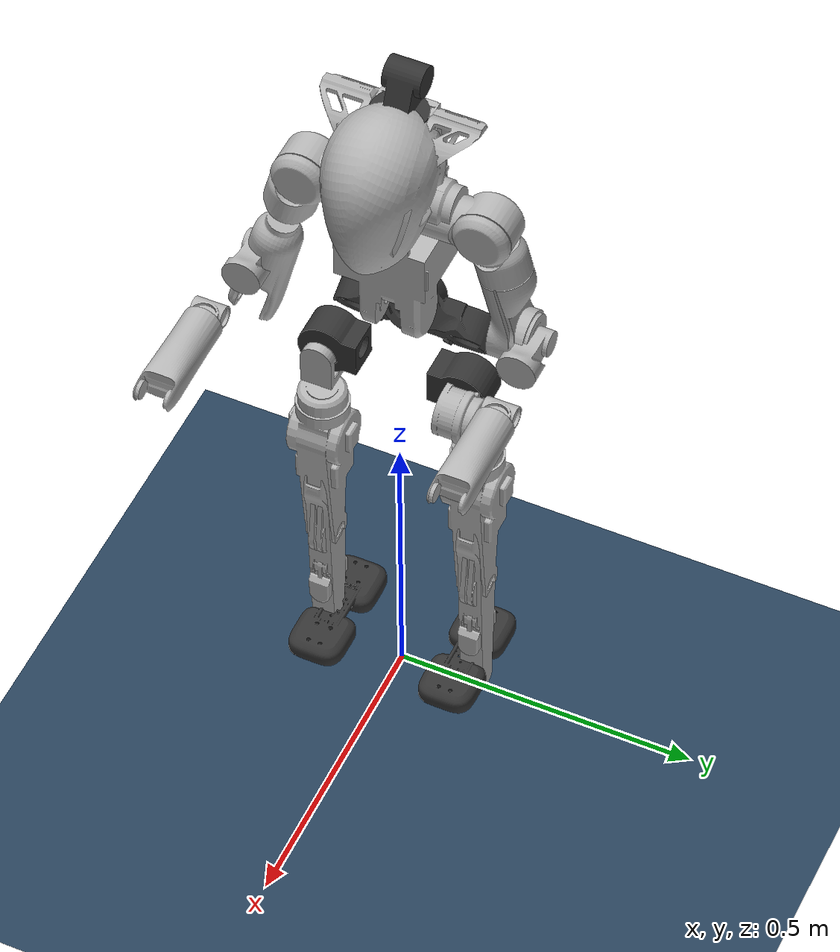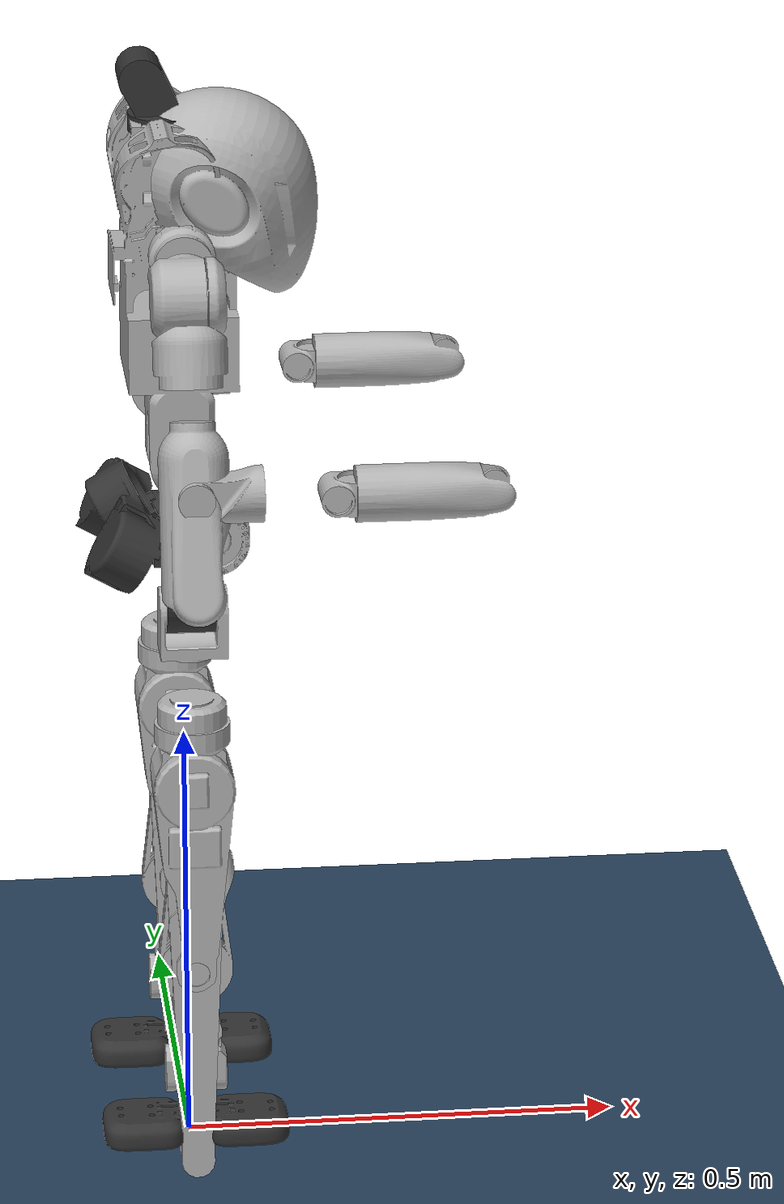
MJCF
<mujoco model="E1_2_v1">
  <compiler angle="radian" meshdir="./meshes/"/>

  <default>
    <default class="e2">
      <geom contype="0" conaffinity="0"/>
      <joint frictionloss="0.01" damping="0.01" armature="0.01"/>

      <default class="hip">
        <default class="hip_pitch">
          <joint axis="0 1 0" range="-2.5307 2.8798" actuatorfrcrange="-120 120"/>
        </default>
        <default class="hip_roll">
          <joint axis="1 0 0" actuatorfrcrange="-60 60"/>
        </default>
        <default class="hip_yaw">
          <joint axis="0 0 1" range="-2.0944 2.0944" actuatorfrcrange="-36 36"/>
        </default>
      </default>
      <default class="knee">
        <joint axis="0 1 0" range="0 2.2689" actuatorfrcrange="-120 120"/>
      </default>
      <default class="ankle">
        <default class="ankle_pitch">
          <joint axis="0 1 0" range="-0.5236 0.5236" actuatorfrcrange="-36 36"/>
        </default>
        <default class="ankle_roll">
          <joint axis="1 0 0" range="-1.5708 1.5708" actuatorfrcrange="-30 30"/>
        </default>
      </default>
      <default class="waist_yaw">
        <joint axis="0 0 1" range="-2.0944 2.0944" actuatorfrcrange="-60 60"/>
      </default>
      <default class="shoulder">
        <default class="shoulder_pitch">
          <joint axis="0 1 0" range="-2.2253 0.9163" actuatorfrcrange="-60 60"/>
        </default>
        <default class="shoulder_roll">
          <joint axis="1 0 0" actuatorfrcrange="-36 36"/>
        </default>
        <default class="shoulder_yaw">
          <joint axis="0 0 1" range="-2.0944 2.0944" actuatorfrcrange="-15 15"/>
        </default>
      </default>
      <default class="elbow">
        <joint axis="0 1 0" range="-0.698 1.5708" actuatorfrcrange="-60 60"/>
      </default>
      <default class="wrist">
        <default class="wrist_roll">
          <joint axis="1 0 0" range="-2.0944 2.0944" actuatorfrcrange="-15 15"/>
        </default>
        <default class="wrist_pitch">
          <joint axis="0 1 0" actuatorfrcrange="-6 6"/>
        </default>
      </default>
      <default class="head">
        <default class="head_pitch">
          <joint axis="0 1 0" range="-0.2618 0.2618" actuatorfrcrange="-30 30"/>
        </default>
        <default class="head_yaw">
          <joint axis="0 0 1" range="-0.7854 0.7854" actuatorfrcrange="-30 30"/>
        </default>
      </default>

      <default class="visual">
        <geom group="2" type="mesh" density="0" material="silver"/>
      </default>
      <default class="collision">
        <geom group="3" type="mesh" rgba=".2 .6 .2 .3" contype="1" conaffinity="1"/>
      </default>
    </default>
  </default>

  <asset>
    <material name="silver" rgba="0.7 0.7 0.7 1"/>
    <material name="black" rgba="0.2 0.2 0.2 1"/>

    <mesh name="pelvis" file="pelvis.STL"/>
    <mesh name="left_hip_pitch_link" file="left_hip_pitch_link.STL"/>
    <mesh name="left_hip_roll_link" file="left_hip_roll_link.STL"/>
    <mesh name="left_hip_yaw_link" file="left_hip_yaw_link.STL"/>
    <mesh name="left_knee_link" file="left_knee_link.STL"/>
    <mesh name="left_ankle_pitch_link" file="left_ankle_pitch_link.STL"/>
    <mesh name="left_ankle_roll_link_v1_2" file="left_ankle_roll_link_v1_2.STL"/>
    <mesh name="right_hip_pitch_link" file="right_hip_pitch_link.STL"/>
    <mesh name="right_hip_roll_link" file="right_hip_roll_link.STL"/>
    <mesh name="right_hip_yaw_link" file="right_hip_yaw_link.STL"/>
    <mesh name="right_knee_link" file="right_knee_link.STL"/>
    <mesh name="right_ankle_pitch_link" file="right_ankle_pitch_link.STL"/>
    <mesh name="right_ankle_roll_link_v1_2" file="right_ankle_roll_link_v1_2.STL"/>
    <mesh name="torso_link" file="torso_link.STL"/>
    <mesh name="left_shoulder_pitch_link" file="left_shoulder_pitch_link.STL"/>
    <mesh name="left_shoulder_roll_link" file="left_shoulder_roll_link.STL"/>
    <mesh name="left_shoulder_yaw_link" file="left_shoulder_yaw_link.STL"/>
    <mesh name="left_elbow_link" file="left_elbow_link.STL"/>
    <mesh name="left_wrist_roll_link" file="left_wrist_roll_link.STL"/>
    <mesh name="left_wrist_pitch_link" file="left_wrist_pitch_link.STL"/>
    <mesh name="right_shoulder_pitch_link" file="right_shoulder_pitch_link.STL"/>
    <mesh name="right_shoulder_roll_link" file="right_shoulder_roll_link.STL"/>
    <mesh name="right_shoulder_yaw_link" file="right_shoulder_yaw_link.STL"/>
    <mesh name="right_elbow_link" file="right_elbow_link.STL"/>
    <mesh name="right_wrist_roll_link" file="right_wrist_roll_link.STL"/>
    <mesh name="right_wrist_pitch_link" file="right_wrist_pitch_link.STL"/>
    <mesh name="head_pitch_link" file="head_pitch_link.STL"/>
    <mesh name="head_yaw_link" file="head_yaw_link.STL"/>
  </asset>

  <worldbody>
    <body name="pelvis" pos="0 0 0.715" childclass="e2">
      <inertial pos="-2.026e-05 0 0.0250193" quat="1 -1.77058e-05 -6.2652e-05 0.000906207" mass="3.6" diaginertia="0.0112704 0.00928407 0.00672158"/>
      <freejoint name="floating_base_joint"/>
      <geom class="visual" material="black" mesh="pelvis"/>
      <geom class="visual" mesh="pelvis"/>
      <site name="imu_in_pelvis" size="0.01" pos="0.04 0 -0.04" rgba="0 0 0 0"/>
      <geom class="collision" mesh="pelvis"/>
      <body name="left_hip_pitch_link" pos="0 0.0575 0">
        <inertial pos="0.00088737 0.0559209 -0.0170011" quat="0.525183 0.830564 -0.161076 0.0916522" mass="1.01" diaginertia="0.00103812 0.00100921 0.000721394"/>
        <joint name="left_hip_pitch_joint" class="hip_pitch"/>
        <geom class="visual" material="black" mesh="left_hip_pitch_link"/>
        <body name="left_hip_roll_link" pos="0 0.0625 -0.02">
          <inertial pos="-0.00054795 0.00928439 -0.070913" quat="0.72708 0.0123078 0.0971982 0.679526" mass="0.981" diaginertia="0.00140293 0.0012261 0.000954215"/>
          <joint name="left_hip_roll_joint" class="hip_roll" range="-0.5236 3.1416"/>
          <geom class="visual" mesh="left_hip_roll_link"/>
          <geom class="collision" mesh="left_hip_roll_link"/>
          <body name="left_hip_yaw_link" pos="0 0.01 -0.098">
            <inertial pos="-8.81e-06 -0.00845833 -0.163113" quat="0.707299 -0.00656895 0.00682479 0.706851" mass="1.56" diaginertia="0.00493085 0.00429472 0.00135114"/>
            <joint name="left_hip_yaw_joint" class="hip_yaw"/>
            <geom class="visual" mesh="left_hip_yaw_link"/>
            <geom class="collision" mesh="left_hip_yaw_link"/>
            <body name="left_knee_link" pos="0 0 -0.182">
              <inertial pos="-0.00054127 0.020434 -0.100513" quat="0.710429 -0.000848428 0.00238427 0.703764" mass="0.389" diaginertia="0.00417321 0.00390613 0.000296172"/>
              <joint name="left_knee_joint" class="knee"/>
              <geom class="visual" mesh="left_knee_link"/>
              <geom class="collision" mesh="left_knee_link"/>
              <body name="left_ankle_pitch_link" pos="0 0 -0.23">
                <inertial pos="0.00011592 -0.00958151 -0.0284272" quat="0.705154 0.0494053 -0.049277 0.705612" mass="1.333" diaginertia="0.00253878 0.00227413 0.000815969"/>
                <joint name="left_ankle_pitch_joint" class="ankle_pitch"/>
                <geom class="visual" mesh="left_ankle_pitch_link"/>
                <body name="left_ankle_roll_link" pos="0 -0.016 -0.07">
                  <inertial pos="-0.00176848 0 -0.0465728" quat="0 0.706212 0 0.708" mass="0.578" diaginertia="0.0023466 0.00219847 0.000444688"/>
                  <joint name="left_ankle_roll_joint" class="ankle_roll"/>
                  <geom class="visual" material="black" mesh="left_ankle_roll_link_v1_2"/>
                  <geom name="left_foot_collision" class="collision" type="box" size="0.046 0.046 0.015" pos="0.06 0 -0.052"/>
                  <geom class="collision" type="box" size="0.046 0.046 0.015" pos="-0.06 0 -0.052"/>
                </body>
              </body>
            </body>
          </body>
        </body>
      </body>
      <body name="right_hip_pitch_link" pos="0 -0.0575 0">
        <inertial pos="0.00088737 -0.0559194 -0.0170037" quat="0.830604 0.524849 -0.0921638 0.16167" mass="1.005" diaginertia="0.00103816 0.00100913 0.000721421"/>
        <joint name="right_hip_pitch_joint" class="hip_pitch"/>
        <geom class="visual" material="black" mesh="right_hip_pitch_link"/>
        <body name="right_hip_roll_link" pos="0 -0.0625 -0.02">
          <inertial pos="-0.00054795 -0.00928439 -0.070913" quat="0.679526 0.0971982 0.0123078 0.72708" mass="0.981" diaginertia="0.00140293 0.0012261 0.000954215"/>
          <joint name="right_hip_roll_joint" class="hip_roll" range="-3.1416 0.5236"/>
          <geom class="visual" mesh="right_hip_roll_link"/>
          <geom class="collision" mesh="right_hip_roll_link"/>
          <body name="right_hip_yaw_link" pos="0 -0.01 -0.098">
            <inertial pos="8.81e-06 0.00845833 -0.163113" quat="0.707267 0.00689281 -0.00650074 0.706883" mass="1.561" diaginertia="0.00493085 0.00429472 0.00135113"/>
            <joint name="right_hip_yaw_joint" class="hip_yaw"/>
            <geom class="visual" mesh="right_hip_yaw_link"/>
            <geom class="collision" mesh="right_hip_yaw_link"/>
            <body name="right_knee_link" pos="0 0 -0.182">
              <inertial pos="-0.00054256 -0.020434 -0.100513" quat="0.703753 0.00255437 -0.000679727 0.71044" mass="0.389" diaginertia="0.00417321 0.00390614 0.000296163"/>
              <joint name="right_knee_joint" class="knee"/>
              <geom class="visual" mesh="right_knee_link"/>
              <geom class="collision" mesh="right_knee_link"/>
              <body name="right_ankle_pitch_link" pos="0 0 -0.23">
                <inertial pos="0.00011592 0.00956002 -0.0284576" quat="0.706733 -0.0493233 0.0493065 0.704035" mass="1.333" diaginertia="0.0025364 0.00227145 0.000815675"/>
                <joint name="right_ankle_pitch_joint" class="ankle_pitch"/>
                <geom class="visual" mesh="right_ankle_pitch_link"/>
                <body name="right_ankle_roll_link" pos="0 0.016 -0.07">
                  <inertial pos="-0.00176848 0 -0.0465753" quat="0 0.706212 0 0.708" mass="0.578" diaginertia="0.0023466 0.00219847 0.000444688"/>
                  <joint name="right_ankle_roll_joint" class="ankle_roll"/>
                  <geom class="visual" material="black" mesh="right_ankle_roll_link_v1_2"/>
                  <geom name="right_foot_collision" class="collision" type="box" size="0.046 0.046 0.015" pos="0.06 0 -0.052"/>
                  <geom class="collision" type="box" size="0.046 0.046 0.015" pos="-0.06 0 -0.052"/>
                </body>
              </body>
            </body>
          </body>
        </body>
      </body>
      <body name="torso_link" pos="0 0 0.12">
        <inertial pos="0.00939865 -0.00010371 0.142031" quat="0.998895 0.000719594 0.047 0.000291884" mass="5.45" diaginertia="0.0520713 0.039092 0.0193737"/>
        <joint name="waist_yaw_joint" class="waist_yaw"/>
        <geom class="visual" mesh="torso_link"/>
        <geom class="collision" mesh="torso_link"/>
        <body name="left_shoulder_pitch_link" pos="0 0.109 0.23">
          <inertial pos="0.0002164 0.0326152 7.9e-06" quat="0.705969 0.707947 -0.0128594 -0.015888" mass="0.764" diaginertia="0.000639277 0.000540109 0.000448694"/>
          <joint name="left_shoulder_pitch_joint" class="shoulder_pitch"/>
          <geom class="visual" mesh="left_shoulder_pitch_link"/>
          <body name="left_shoulder_roll_link" pos="0 0.036 0">
            <inertial pos="0.0091122 0.017234 -0.042207" quat="0.964204 0.187993 0.182061 0.0426904" mass="0.5" diaginertia="0.000780092 0.000718395 0.000287923"/>
            <joint name="left_shoulder_roll_joint" class="shoulder_roll" range="-0.5236 3.1416"/>
            <geom class="visual" mesh="left_shoulder_roll_link"/>
            <body name="left_shoulder_yaw_link" pos="0 0.03235 -0.091754" quat="0.991445 0.130526 0 0">
              <inertial pos="-3.07e-06 -0.0105563 -0.100188" quat="0.707013 0.0205321 -0.0204544 0.706606" mass="0.909" diaginertia="0.00125616 0.00114044 0.000561167"/>
              <joint name="left_shoulder_yaw_joint" class="shoulder_yaw"/>
              <geom class="visual" mesh="left_shoulder_yaw_link"/>
              <geom class="collision" mesh="left_shoulder_yaw_link"/>
              <body name="left_elbow_link" pos="0 0.016368 -0.11645" quat="0.991445 -0.130526 0 0">
                <inertial pos="0.0734429 0.0108741 -2.677e-05" quat="0.520428 0.521868 0.477567 0.478266" mass="0.525" diaginertia="0.000525457 0.00049276 0.000235073"/>
                <joint name="left_elbow_joint" class="elbow"/>
                <geom class="visual" mesh="left_elbow_link"/>
                <geom class="collision" mesh="left_elbow_link"/>
                <body name="left_wrist_roll_link" pos="0.1 0.0117 0">
                  <inertial pos="0.030634 0.0159035 0" quat="0.610074 0.610074 0.357506 0.357506" mass="0.05" diaginertia="3.36716e-05 3.109e-05 1.39484e-05"/>
                  <joint name="left_wrist_roll_joint" class="wrist_roll"/>
                  <geom class="visual" mesh="left_wrist_roll_link"/>
                  <geom class="collision" mesh="left_wrist_roll_link"/>
                  <body name="left_wrist_pitch_link" pos="0.053 0 0">
                    <inertial pos="0.0225121 -0.00014957 -0.0006746" quat="0.621742 0.351469 0.601172 0.358467" mass="0.575" diaginertia="0.000487596 0.000487332 0.000193483"/>
                    <joint name="left_wrist_pitch_joint" class="wrist_pitch" range="-2.0944 2.0944"/>
                    <geom class="visual" mesh="left_wrist_pitch_link"/>
                    <geom class="collision" mesh="left_wrist_pitch_link"/>
                  </body>
                </body>
              </body>
            </body>
          </body>
        </body>
        <body name="right_shoulder_pitch_link" pos="0 -0.109 0.23">
          <inertial pos="0.0002164 -0.0326133 4.54e-06" quat="0.708239 0.705683 0.0154121 0.013133" mass="0.764" diaginertia="0.000639261 0.00053997 0.000448819"/>
          <joint name="right_shoulder_pitch_joint" class="shoulder_pitch"/>
          <geom class="visual" mesh="right_shoulder_pitch_link"/>
          <body name="right_shoulder_roll_link" pos="0 -0.036 0">
            <inertial pos="0.0091121 -0.017234 -0.042207" quat="0.964204 -0.187995 0.18206 -0.0426971" mass="0.5" diaginertia="0.000780102 0.000718405 0.000287933"/>
            <joint name="right_shoulder_roll_joint" class="shoulder_roll" range="-3.1416 0.5236"/>
            <geom class="visual" mesh="right_shoulder_roll_link"/>
            <body name="right_shoulder_yaw_link" pos="0 -0.03235 -0.091754" quat="0.991445 -0.130526 0 0">
              <inertial pos="0 0.0105679 -0.100231" quat="0.706633 -0.0209942 0.0209465 0.706959" mass="0.91" diaginertia="0.0012565 0.00114115 0.000561537"/>
              <joint name="right_shoulder_yaw_joint" class="shoulder_yaw"/>
              <geom class="visual" mesh="right_shoulder_yaw_link"/>
              <geom class="collision" mesh="right_shoulder_yaw_link"/>
              <body name="right_elbow_link" pos="0 -0.016368 -0.11645" quat="0.991445 0.130526 0 0">
                <inertial pos="0.00023724 -2.499e-05 2.678e-05" quat="0.477567 0.478266 0.520428 0.521868" mass="0.525" diaginertia="0.000525457 0.00049276 0.000235073"/>
                <joint name="right_elbow_joint" class="elbow"/>
                <geom class="visual" mesh="right_elbow_link"/>
                <geom class="collision" mesh="right_elbow_link"/>
                <body name="right_wrist_roll_link" pos="0.1 -0.0117 0">
                  <inertial pos="0.030634 -0.0159035 0" quat="0.357506 0.357506 0.610074 0.610074" mass="0.05" diaginertia="3.36716e-05 3.109e-05 1.39484e-05"/>
                  <joint name="right_wrist_roll_joint" class="wrist_roll"/>
                  <geom class="visual" mesh="right_wrist_roll_link"/>
                  <geom class="collision" mesh="right_wrist_roll_link"/>
                  <body name="right_wrist_pitch_link" pos="0.053 0 0">
                    <inertial pos="0.0224977 0.00014957 -0.00067803" quat="0.424067 0.559328 0.415264 0.578684" mass="0.575" diaginertia="0.000487178 0.000486987 0.000193495"/>
                    <joint name="right_wrist_pitch_joint" class="wrist_pitch" range="-0.5236 0.5236"/>
                    <geom class="visual" mesh="right_wrist_pitch_link"/>
                    <geom class="collision" mesh="right_wrist_pitch_link"/>
                  </body>
                </body>
              </body>
            </body>
          </body>
        </body>
        <body name="head_pitch_link" pos="0 0 0.295">
          <inertial pos="-0.0065914 0 0.042173" quat="0.997131 0 -0.0756995 0" mass="0.5" diaginertia="0.000552284 0.00052758 0.000205916"/>
          <joint name="head_pitch_joint" class="head_pitch"/>
          <geom class="visual" mesh="head_pitch_link"/>
          <geom class="collision" mesh="head_pitch_link"/>
          <body name="head_yaw_link" pos="-0.01 0 0.095">
            <inertial pos="0.042627 -1.307e-06 0.027428" quat="0.980498 -0.000152354 -0.19653 8.28251e-05" mass="0.6" diaginertia="0.000933823 0.00073769 0.000559467"/>
            <joint name="head_yaw_joint" class="head_yaw"/>
            <geom class="visual" material="black" mesh="head_yaw_link"/>
            <geom class="collision" mesh="head_yaw_link"/>
          </body>
        </body>
      </body>
    </body>
  </worldbody>

  <contact>
    <!-- left foot - floor -->
    <pair name="left_foot_floor" geom1="left_foot_collision" geom2="floor" solref="0.01 1" friction="0.8 0.8"/>
    <!-- right foot - floor -->
    <pair name="right_foot_floor" geom1="right_foot_collision" geom2="floor" solref="0.01 1" friction="0.8 0.8"/>
  </contact>

  <actuator>
    <!-- LEFT LEG -->
    <motor name="left_hip_pitch"  joint="left_hip_pitch_joint"  gear="1" ctrllimited="true" ctrlrange="-120 120"/>
    <motor name="left_hip_roll"   joint="left_hip_roll_joint"   gear="1" ctrllimited="true" ctrlrange="-60 60"/>
    <motor name="left_hip_yaw"    joint="left_hip_yaw_joint"    gear="1" ctrllimited="true" ctrlrange="-36 36"/>
    <motor name="left_knee"       joint="left_knee_joint"       gear="1" ctrllimited="true" ctrlrange="-120 120"/>
    <motor name="left_ankle_pitch" joint="left_ankle_pitch_joint" gear="1" ctrllimited="true" ctrlrange="-36 36"/>
    <motor name="left_ankle_roll"  joint="left_ankle_roll_joint"  gear="1" ctrllimited="true" ctrlrange="-30 30"/>
    <!-- RIGHT LEG -->
    <motor name="right_hip_pitch"  joint="right_hip_pitch_joint"  gear="1" ctrllimited="true" ctrlrange="-120 120"/>
    <motor name="right_hip_roll"   joint="right_hip_roll_joint"   gear="1" ctrllimited="true" ctrlrange="-60 60"/>
    <motor name="right_hip_yaw"    joint="right_hip_yaw_joint"    gear="1" ctrllimited="true" ctrlrange="-36 36"/>
    <motor name="right_knee"       joint="right_knee_joint"       gear="1" ctrllimited="true" ctrlrange="-120 120"/>
    <motor name="right_ankle_pitch" joint="right_ankle_pitch_joint" gear="1" ctrllimited="true" ctrlrange="-36 36"/>
    <motor name="right_ankle_roll"  joint="right_ankle_roll_joint"  gear="1" ctrllimited="true" ctrlrange="-30 30"/>
    <!-- WAIST -->
    <motor name="waist_yaw" joint="waist_yaw_joint" gear="1" ctrllimited="true" ctrlrange="-60 60"/>
    <!-- LEFT ARM -->
    <motor name="left_shoulder_pitch" joint="left_shoulder_pitch_joint" gear="1" ctrllimited="true" ctrlrange="-60 60"/>
    <motor name="left_shoulder_roll"  joint="left_shoulder_roll_joint"  gear="1" ctrllimited="true" ctrlrange="-36 36"/>
    <motor name="left_shoulder_yaw"   joint="left_shoulder_yaw_joint"   gear="1" ctrllimited="true" ctrlrange="-15 15"/>
    <motor name="left_elbow"          joint="left_elbow_joint"          gear="1" ctrllimited="true" ctrlrange="-60 60"/>
    <motor name="left_wrist_roll"     joint="left_wrist_roll_joint"     gear="1" ctrllimited="true" ctrlrange="-15 15"/>
    <motor name="left_wrist_pitch"    joint="left_wrist_pitch_joint"    gear="1" ctrllimited="true" ctrlrange="-6 6"/>
    <!-- RIGHT ARM -->
    <motor name="right_shoulder_pitch" joint="right_shoulder_pitch_joint" gear="1" ctrllimited="true" ctrlrange="-60 60"/>
    <motor name="right_shoulder_roll"  joint="right_shoulder_roll_joint"  gear="1" ctrllimited="true" ctrlrange="-36 36"/>
    <motor name="right_shoulder_yaw"   joint="right_shoulder_yaw_joint"   gear="1" ctrllimited="true" ctrlrange="-15 15"/>
    <motor name="right_elbow"          joint="right_elbow_joint"          gear="1" ctrllimited="true" ctrlrange="-60 60"/>
    <motor name="right_wrist_roll"     joint="right_wrist_roll_joint"     gear="1" ctrllimited="true" ctrlrange="-15 15"/>
    <motor name="right_wrist_pitch"    joint="right_wrist_pitch_joint"    gear="1" ctrllimited="true" ctrlrange="-6 6"/>
    <!-- HEAD -->
    <motor name="head_pitch" joint="head_pitch_joint" gear="1" ctrllimited="true" ctrlrange="-30 30"/>
    <motor name="head_yaw"   joint="head_yaw_joint"   gear="1" ctrllimited="true" ctrlrange="-30 30"/>
  </actuator>

  <sensor>
    <!-- Joint position sensors -->
    <jointpos name="left_hip_pitch_pos" joint="left_hip_pitch_joint"/>
    <jointpos name="left_hip_roll_pos" joint="left_hip_roll_joint"/>
    <jointpos name="left_hip_yaw_pos" joint="left_hip_yaw_joint"/>
    <jointpos name="left_knee_pos" joint="left_knee_joint"/>
    <jointpos name="left_ankle_pitch_pos" joint="left_ankle_pitch_joint"/>
    <jointpos name="left_ankle_roll_pos" joint="left_ankle_roll_joint"/>
    <jointpos name="right_hip_pitch_pos" joint="right_hip_pitch_joint"/>
    <jointpos name="right_hip_roll_pos" joint="right_hip_roll_joint"/>
    <jointpos name="right_hip_yaw_pos" joint="right_hip_yaw_joint"/>
    <jointpos name="right_knee_pos" joint="right_knee_joint"/>
    <jointpos name="right_ankle_pitch_pos" joint="right_ankle_pitch_joint"/>
    <jointpos name="right_ankle_roll_pos" joint="right_ankle_roll_joint"/>
    <jointpos name="waist_yaw_pos" joint="waist_yaw_joint"/>
    <jointpos name="left_shoulder_pitch_pos" joint="left_shoulder_pitch_joint"/>
    <jointpos name="left_shoulder_roll_pos" joint="left_shoulder_roll_joint"/>
    <jointpos name="left_shoulder_yaw_pos" joint="left_shoulder_yaw_joint"/>
    <jointpos name="left_elbow_pos" joint="left_elbow_joint"/>
    <jointpos name="left_wrist_roll_pos" joint="left_wrist_roll_joint"/>
    <jointpos name="left_wrist_pitch_pos" joint="left_wrist_pitch_joint"/>
    <jointpos name="right_shoulder_pitch_pos" joint="right_shoulder_pitch_joint"/>
    <jointpos name="right_shoulder_roll_pos" joint="right_shoulder_roll_joint"/>
    <jointpos name="right_shoulder_yaw_pos" joint="right_shoulder_yaw_joint"/>
    <jointpos name="right_elbow_pos" joint="right_elbow_joint"/>
    <jointpos name="right_wrist_roll_pos" joint="right_wrist_roll_joint"/>
    <jointpos name="right_wrist_pitch_pos" joint="right_wrist_pitch_joint"/>
    <jointpos name="head_pitch_pos" joint="head_pitch_joint"/>
    <jointpos name="head_yaw_pos" joint="head_yaw_joint"/>
    <!-- Joint velocity sensors -->
    <jointvel name="left_hip_pitch_vel" joint="left_hip_pitch_joint"/>
    <jointvel name="left_hip_roll_vel" joint="left_hip_roll_joint"/>
    <jointvel name="left_hip_yaw_vel" joint="left_hip_yaw_joint"/>
    <jointvel name="left_knee_vel" joint="left_knee_joint"/>
    <jointvel name="left_ankle_pitch_vel" joint="left_ankle_pitch_joint"/>
    <jointvel name="left_ankle_roll_vel" joint="left_ankle_roll_joint"/>
    <jointvel name="right_hip_pitch_vel" joint="right_hip_pitch_joint"/>
    <jointvel name="right_hip_roll_vel" joint="right_hip_roll_joint"/>
    <jointvel name="right_hip_yaw_vel" joint="right_hip_yaw_joint"/>
    <jointvel name="right_knee_vel" joint="right_knee_joint"/>
    <jointvel name="right_ankle_pitch_vel" joint="right_ankle_pitch_joint"/>
    <jointvel name="right_ankle_roll_vel" joint="right_ankle_roll_joint"/>
    <jointvel name="waist_yaw_vel" joint="waist_yaw_joint"/>
    <jointvel name="left_shoulder_pitch_vel" joint="left_shoulder_pitch_joint"/>
    <jointvel name="left_shoulder_roll_vel" joint="left_shoulder_roll_joint"/>
    <jointvel name="left_shoulder_yaw_vel" joint="left_shoulder_yaw_joint"/>
    <jointvel name="left_elbow_vel" joint="left_elbow_joint"/>
    <jointvel name="left_wrist_roll_vel" joint="left_wrist_roll_joint"/>
    <jointvel name="left_wrist_pitch_vel" joint="left_wrist_pitch_joint"/>
    <jointvel name="right_shoulder_pitch_vel" joint="right_shoulder_pitch_joint"/>
    <jointvel name="right_shoulder_roll_vel" joint="right_shoulder_roll_joint"/>
    <jointvel name="right_shoulder_yaw_vel" joint="right_shoulder_yaw_joint"/>
    <jointvel name="right_elbow_vel" joint="right_elbow_joint"/>
    <jointvel name="right_wrist_roll_vel" joint="right_wrist_roll_joint"/>
    <jointvel name="right_wrist_pitch_vel" joint="right_wrist_pitch_joint"/>
    <jointvel name="head_pitch_vel" joint="head_pitch_joint"/>
    <jointvel name="head_yaw_vel" joint="head_yaw_joint"/>
    <!-- Actuator torque sensors -->
    <actuatorfrc name="left_hip_pitch_torque" actuator="left_hip_pitch"/>
    <actuatorfrc name="left_hip_roll_torque" actuator="left_hip_roll"/>
    <actuatorfrc name="left_hip_yaw_torque" actuator="left_hip_yaw"/>
    <actuatorfrc name="left_knee_torque" actuator="left_knee"/>
    <actuatorfrc name="left_ankle_pitch_torque" actuator="left_ankle_pitch"/>
    <actuatorfrc name="left_ankle_roll_torque" actuator="left_ankle_roll"/>
    <actuatorfrc name="right_hip_pitch_torque" actuator="right_hip_pitch"/>
    <actuatorfrc name="right_hip_roll_torque" actuator="right_hip_roll"/>
    <actuatorfrc name="right_hip_yaw_torque" actuator="right_hip_yaw"/>
    <actuatorfrc name="right_knee_torque" actuator="right_knee"/>
    <actuatorfrc name="right_ankle_pitch_torque" actuator="right_ankle_pitch"/>
    <actuatorfrc name="right_ankle_roll_torque" actuator="right_ankle_roll"/>
    <actuatorfrc name="waist_yaw_torque" actuator="waist_yaw"/>
    <actuatorfrc name="left_shoulder_pitch_torque" actuator="left_shoulder_pitch"/>
    <actuatorfrc name="left_shoulder_roll_torque" actuator="left_shoulder_roll"/>
    <actuatorfrc name="left_shoulder_yaw_torque" actuator="left_shoulder_yaw"/>
    <actuatorfrc name="left_elbow_torque" actuator="left_elbow"/>
    <actuatorfrc name="left_wrist_roll_torque" actuator="left_wrist_roll"/>
    <actuatorfrc name="left_wrist_pitch_torque" actuator="left_wrist_pitch"/>
    <actuatorfrc name="right_shoulder_pitch_torque" actuator="right_shoulder_pitch"/>
    <actuatorfrc name="right_shoulder_roll_torque" actuator="right_shoulder_roll"/>
    <actuatorfrc name="right_shoulder_yaw_torque" actuator="right_shoulder_yaw"/>
    <actuatorfrc name="right_elbow_torque" actuator="right_elbow"/>
    <actuatorfrc name="right_wrist_roll_torque" actuator="right_wrist_roll"/>
    <actuatorfrc name="right_wrist_pitch_torque" actuator="right_wrist_pitch"/>
    <actuatorfrc name="head_pitch_torque" actuator="head_pitch"/>
    <actuatorfrc name="head_yaw_torque" actuator="head_yaw"/>

    <framequat name="orientation" objtype="site" noise="0.001" objname="imu_in_pelvis"/>
    <framepos name="position" objtype="site" noise="0.001" objname="imu_in_pelvis"/>
    <gyro name="angular-velocity" cutoff="34.9" noise="0.005" site="imu_in_pelvis"/>
  </sensor>

  <visual>
    <headlight diffuse="0.6 0.6 0.6" ambient="0.3 0.3 0.3" specular="0 0 0"/>
    <rgba haze="0.15 0.25 0.35 1"/>
    <global azimuth="120" elevation="-20"/>
  </visual>

  <asset>
    <texture type="skybox" builtin="gradient" rgb1="0.3 0.5 0.7" rgb2="0 0 0" width="512" height="3072"/>
    <texture type="2d" name="groundplane" builtin="checker" mark="edge" rgb1="0.2 0.3 0.4" rgb2="0.1 0.2 0.3"
             markrgb="0.8 0.8 0.8" width="300" height="300"/>
    <material name="groundplane" texture="groundplane" texuniform="true" texrepeat="5 5" reflectance="0.2"/>
  </asset>

  <worldbody>
    <light pos="0 0 1.5" dir="0 0 -1" directional="true"/>
    <geom name="floor" size="0 0 0.01" type="plane" material="groundplane" conaffinity="1"/>
  </worldbody>
</mujoco>
